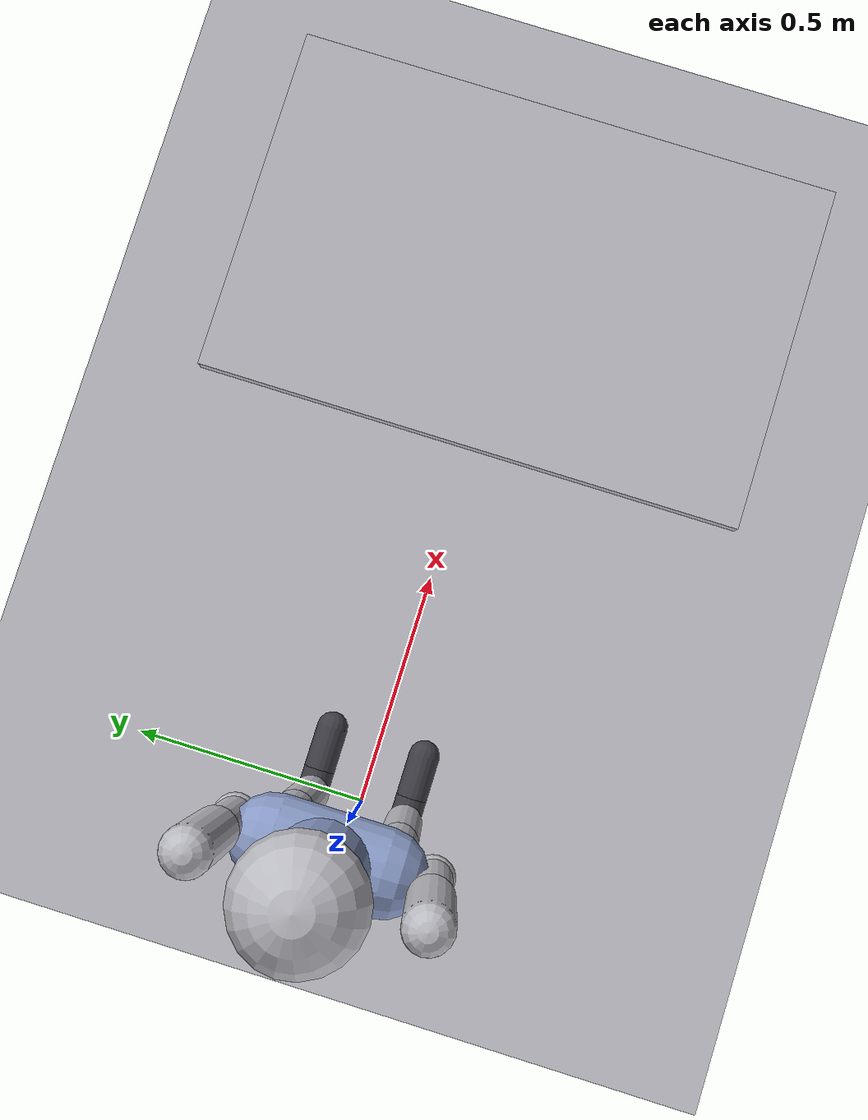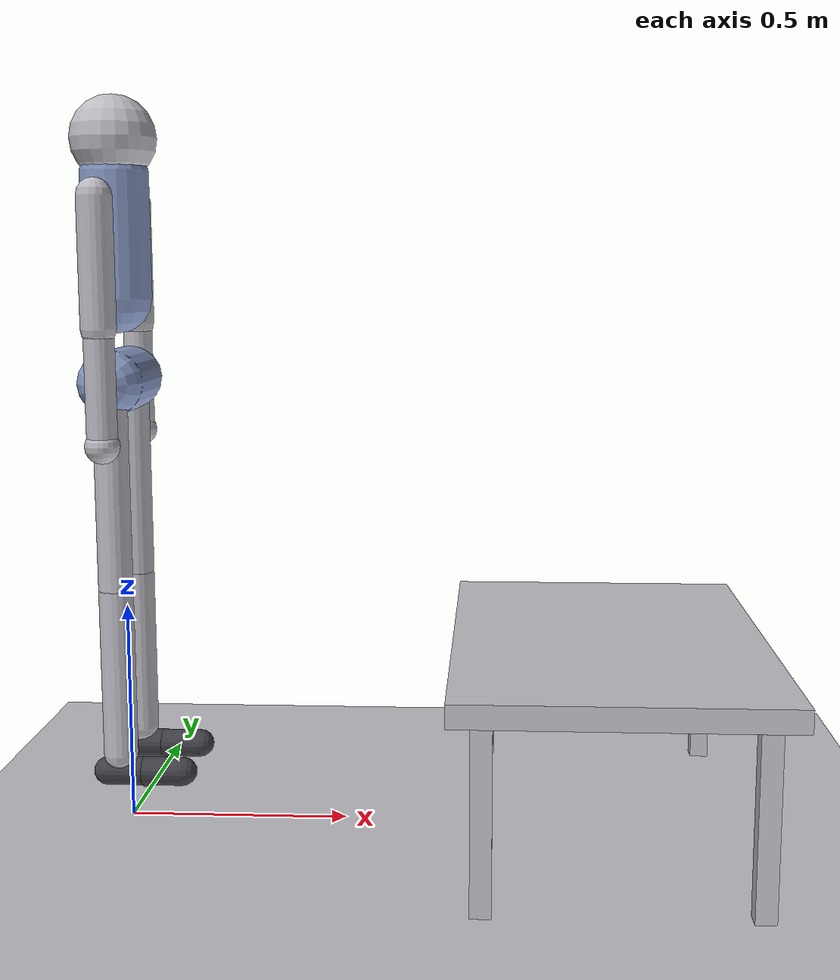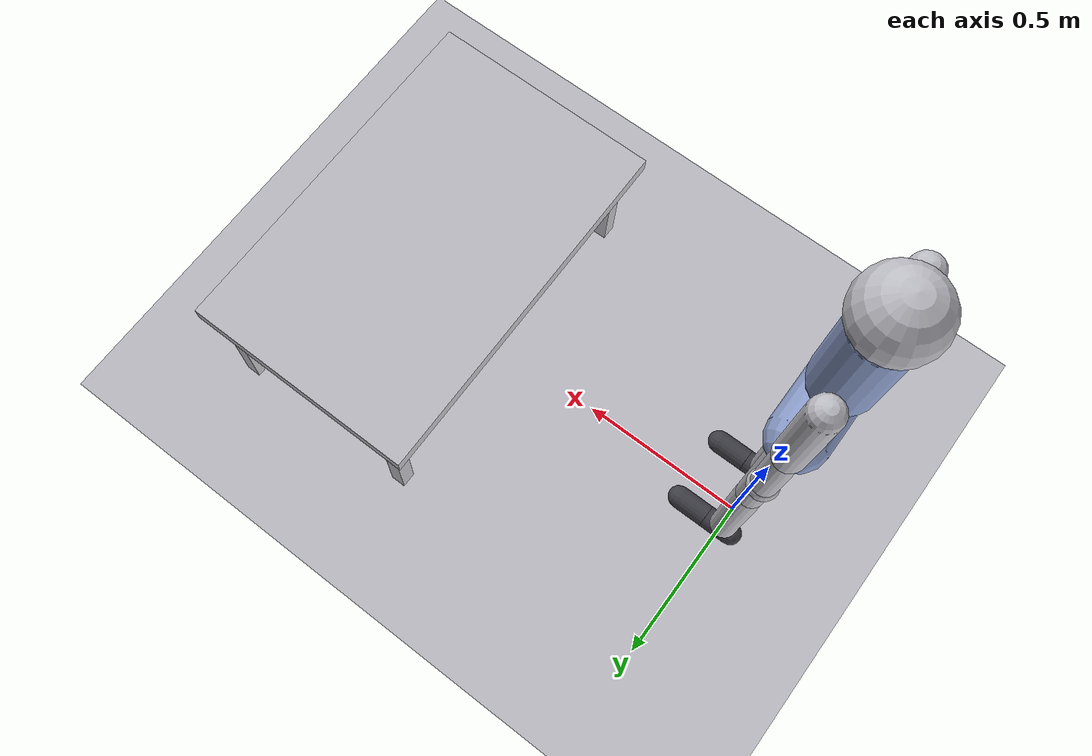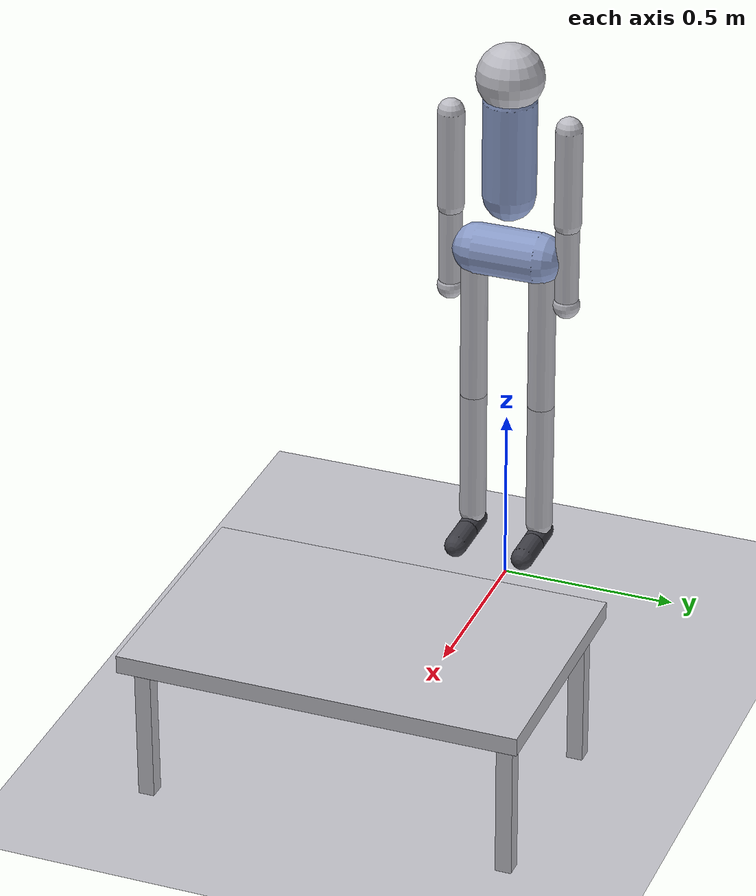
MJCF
<mujoco model="Titan_Humanoid_Competition_V2">

  <compiler angle="degree" autolimits="true"/>

  <option gravity="0 0 -9.81"
          timestep="0.001"
          iterations="50"
          solver="Newton"
          cone="pyramidal"
          impratio="10"/>

  <!-- ═══════════════════════════════════════════════════
       DEFAULT CLASSES
       Hierarchy: global → limb | torso | foot | heavy_joint
  ════════════════════════════════════════════════════ -->
  <default>
    <!-- All joints: hinge, moderate structural damping, armature for realism -->
    <joint type="hinge" damping="1.0" armature="0.02" limited="true"/>
    <!-- All geoms: capsule, realistic human tissue density -->
    <geom type="capsule" rgba="0.75 0.75 0.78 1" density="985" contype="1" conaffinity="1"/>

    <default class="limb">
      <geom size="0.038"/>
    </default>

    <default class="torso_geom">
      <geom size="0.072" rgba="0.55 0.62 0.80 1"/>
    </default>

    <default class="foot_geom">
      <!-- Feet: lower density (shoes ~0.5 kg), high friction contype -->
      <geom size="0.032" density="600" rgba="0.25 0.25 0.28 1"
            contype="1" conaffinity="1"
            friction="0.9 0.005 0.0001"/>
    </default>

    <!-- Joints that carry heavy load: more damping -->
    <default class="heavy_joint">
      <joint damping="3.0" armature="0.06"/>
    </default>

    <!-- Self-collision group: limbs vs torso disabled -->
    <default class="self_nc">
      <geom contype="2" conaffinity="2"/>
    </default>
  </default>

  <!-- ═══════════════════════════════════════════════════
       ASSETS — materials for visual quality
  ════════════════════════════════════════════════════ -->
  <asset>
    <material name="floor_mat"  rgba="0.20 0.25 0.30 1" reflectance="0.2"/>
    <material name="table_mat"  rgba="0.42 0.28 0.18 1"/>
    <material name="skin_mat"   rgba="0.90 0.65 0.52 1"/>
    <material name="metal_mat"  rgba="0.50 0.55 0.62 1" reflectance="0.4"/>
  </asset>

  <!-- ═══════════════════════════════════════════════════
       WORLD
  ════════════════════════════════════════════════════ -->
  <worldbody>
    <light name="sun"     directional="true" diffuse=".8 .8 .8" specular=".2 .2 .2"
           pos="0 0 5"   dir="0 -0.3 -1" castshadow="true"/>
    <light name="fill"    directional="true" diffuse=".3 .3 .4"
           pos="-3 3 4"  dir="1 -1 -1"/>

    <!-- Floor: friction tuned for stable bipedal contact -->
    <geom name="floor" type="plane" size="10 10 0.1"
          material="floor_mat"
          friction="0.85 0.005 0.0001"
          contype="1" conaffinity="1"/>

    <!-- Table obstacle -->
    <body name="table" pos="1.1 0 0.42">
      <geom name="table_top"  type="box" size="0.35 0.55 0.025" material="table_mat"
            contype="1" conaffinity="1"/>
      <geom name="table_leg1" type="box" size="0.022 0.022 0.22" pos=" 0.28  0.50 -0.245" material="metal_mat"/>
      <geom name="table_leg2" type="box" size="0.022 0.022 0.22" pos="-0.28  0.50 -0.245" material="metal_mat"/>
      <geom name="table_leg3" type="box" size="0.022 0.022 0.22" pos=" 0.28 -0.50 -0.245" material="metal_mat"/>
      <geom name="table_leg4" type="box" size="0.022 0.022 0.22" pos="-0.28 -0.50 -0.245" material="metal_mat"/>
    </body>

    <body name="pelvis" pos="0 0 1.02">
      <freejoint name="root"/>

      <!-- Pelvis CoM site for ZMP computation -->
      <site name="pelvis_com" pos="0 0 0.05" size="0.01"/>
      <geom name="pelvis_geom" class="torso_geom" fromto="0 -0.09 0 0 0.09 0" rgba="0.55 0.62 0.80 1"/>

      <!-- ── TORSO ───────────────────────── -->
      <body name="torso" pos="0 0 0.18">
        <joint name="torso_pitch" axis="0 1 0" range="-20 20" damping="4.0" armature="0.08"/>
        <geom name="torso_geom" class="torso_geom" fromto="0 0 0 0 0 0.28" size="0.075"/>

        <!-- ── HEAD ─────────────────────── -->
        <body name="head" pos="0 0 0.35">
          <joint name="head_pitch" axis="0 1 0" range="-30 30" damping="0.5" armature="0.005"/>
          <geom name="head_geom" type="sphere" size="0.095" material="skin_mat"
                contype="4" conaffinity="4"/>
          <site name="head_imu" pos="0 0 0" size="0.01"/>
        </body>

        <!-- ── RIGHT ARM ─────────────────── -->
        <body name="r_upper_arm" pos="0 -0.17 0.22">
          <joint name="r_shoulder_pitch" axis="0 1 0" range="-170 60"  damping="1.5" armature="0.03"/>
          <joint name="r_shoulder_roll"  axis="1 0 0" range="-90  60"  damping="1.2" armature="0.025"/>
          <geom class="limb" fromto="0 0 0 0 0 -0.28"/>
          <body name="r_forearm" pos="0 0 -0.28">
            <joint name="r_elbow" axis="0 1 0" range="-135 5" damping="0.8" armature="0.015"/>
            <geom class="limb" fromto="0 0 0 0 0 -0.25" size="0.033"/>
            <body name="r_hand" pos="0 0 -0.25">
              <joint name="r_wrist_pitch" axis="0 1 0" range="-60 60" damping="0.3" armature="0.005"/>
              <geom type="sphere" size="0.038" material="skin_mat" contype="4" conaffinity="4"/>
              <site name="r_wrist_site" pos="0 0 0" size="0.008"/>
            </body>
          </body>
        </body>

        <!-- ── LEFT ARM ──────────────────── -->
        <body name="l_upper_arm" pos="0 0.17 0.22">
          <joint name="l_shoulder_pitch" axis="0 1 0" range="-170 60"  damping="1.5" armature="0.03"/>
          <joint name="l_shoulder_roll"  axis="1 0 0" range="-60  90"  damping="1.2" armature="0.025"/>
          <geom class="limb" fromto="0 0 0 0 0 -0.28"/>
          <body name="l_forearm" pos="0 0 -0.28">
            <joint name="l_elbow" axis="0 1 0" range="-135 5" damping="0.8" armature="0.015"/>
            <geom class="limb" fromto="0 0 0 0 0 -0.25" size="0.033"/>
            <body name="l_hand" pos="0 0 -0.25">
              <joint name="l_wrist_pitch" axis="0 1 0" range="-60 60" damping="0.3" armature="0.005"/>
              <geom type="sphere" size="0.038" material="skin_mat" contype="4" conaffinity="4"/>
              <site name="l_wrist_site" pos="0 0 0" size="0.008"/>
            </body>
          </body>
        </body>

      </body> <!-- /torso -->

      <!-- ── RIGHT LEG ──────────────────────────────── -->
      <body name="r_thigh" pos="0 -0.10 -0.04">
        <joint name="r_hip_pitch" class="heavy_joint" axis="0 1 0" range="-60 90"/>
        <joint name="r_hip_roll"  class="heavy_joint" axis="1 0 0" range="-30 30"/>
        <geom class="limb" fromto="0 0 0 0 0 -0.42"/>

        <body name="r_shin" pos="0 0 -0.42">
          <joint name="r_knee" class="heavy_joint" axis="0 1 0" range="-5 135"/>
          <geom class="limb" fromto="0 0 0 0 0 -0.38"/>

          <body name="r_foot" pos="0 0 -0.38">
            <joint name="r_ankle_pitch" axis="0 1 0" range="-40 30" damping="1.5" armature="0.03"/>
            <joint name="r_ankle_roll"  axis="1 0 0" range="-20 20" damping="0.8" armature="0.015"/>
            <!-- Heel capsule -->
            <geom name="r_heel" class="foot_geom" fromto="-0.03 0 -0.04  0.05 0 -0.04"/>
            <!-- Toe capsule -->
            <geom name="r_toe"  class="foot_geom" fromto=" 0.05 0 -0.04  0.14 0 -0.04"/>
            <!-- Sole contact site for force sensing -->
            <site name="r_sole" pos="0.055 0 -0.07" size="0.008"/>
          </body>
        </body>
      </body>

      <!-- ── LEFT LEG ───────────────────────────────── -->
      <body name="l_thigh" pos="0 0.10 -0.04">
        <joint name="l_hip_pitch" class="heavy_joint" axis="0 1 0" range="-60 90"/>
        <joint name="l_hip_roll"  class="heavy_joint" axis="1 0 0" range="-30 30"/>
        <geom class="limb" fromto="0 0 0 0 0 -0.42"/>

        <body name="l_shin" pos="0 0 -0.42">
          <joint name="l_knee" class="heavy_joint" axis="0 1 0" range="-5 135"/>
          <geom class="limb" fromto="0 0 0 0 0 -0.38"/>

          <body name="l_foot" pos="0 0 -0.38">
            <joint name="l_ankle_pitch" axis="0 1 0" range="-40 30" damping="1.5" armature="0.03"/>
            <joint name="l_ankle_roll"  axis="1 0 0" range="-20 20" damping="0.8" armature="0.015"/>
            <geom name="l_heel" class="foot_geom" fromto="-0.03 0 -0.04  0.05 0 -0.04"/>
            <geom name="l_toe"  class="foot_geom" fromto=" 0.05 0 -0.04  0.14 0 -0.04"/>
            <site name="l_sole" pos="0.055 0 -0.07" size="0.008"/>
          </body>
        </body>
      </body>

    </body> <!-- /pelvis -->
  </worldbody>

  <actuator>
    <!-- ── LEGS (primary locomotion DOF) ── -->
    <position name="r_hip_pitch_mot"  joint="r_hip_pitch"  kp="350" kv="18" forcerange="-220 220" ctrlrange="-1.047 1.571"/>
    <position name="r_hip_roll_mot"   joint="r_hip_roll"   kp="200" kv="12" forcerange="-120 120" ctrlrange="-0.524 0.524"/>
    <position name="r_knee_mot"       joint="r_knee"       kp="400" kv="22" forcerange="-250 250" ctrlrange="-0.087 2.356"/>
    <position name="r_ankle_pitch_mot" joint="r_ankle_pitch" kp="150" kv="8"  forcerange="-100 100" ctrlrange="-0.698 0.524"/>
    <position name="r_ankle_roll_mot"  joint="r_ankle_roll"  kp="80"  kv="4"  forcerange="-60  60"  ctrlrange="-0.349 0.349"/>

    <position name="l_hip_pitch_mot"  joint="l_hip_pitch"  kp="350" kv="18" forcerange="-220 220" ctrlrange="-1.047 1.571"/>
    <position name="l_hip_roll_mot"   joint="l_hip_roll"   kp="200" kv="12" forcerange="-120 120" ctrlrange="-0.524 0.524"/>
    <position name="l_knee_mot"       joint="l_knee"       kp="400" kv="22" forcerange="-250 250" ctrlrange="-0.087 2.356"/>
    <position name="l_ankle_pitch_mot" joint="l_ankle_pitch" kp="150" kv="8"  forcerange="-100 100" ctrlrange="-0.698 0.524"/>
    <position name="l_ankle_roll_mot"  joint="l_ankle_roll"  kp="80"  kv="4"  forcerange="-60  60"  ctrlrange="-0.349 0.349"/>

    <!-- ── TORSO ── -->
    <position name="torso_pitch_mot"  joint="torso_pitch"  kp="300" kv="20" forcerange="-180 180" ctrlrange="-0.349 0.349"/>

    <!-- ── ARMS (counter-swing, reduced torque) ── -->
    <position name="r_shoulder_p_mot" joint="r_shoulder_pitch" kp="120" kv="8"  forcerange="-80 80"  ctrlrange="-2.967 1.047"/>
    <position name="r_shoulder_r_mot" joint="r_shoulder_roll"  kp="100" kv="6"  forcerange="-60 60"  ctrlrange="-1.571 1.047"/>
    <position name="r_elbow_mot"      joint="r_elbow"          kp="80"  kv="5"  forcerange="-60 60"  ctrlrange="-2.356 0.087"/>
    <position name="r_wrist_mot"      joint="r_wrist_pitch"    kp="40"  kv="2"  forcerange="-25 25"  ctrlrange="-1.047 1.047"/>

    <position name="l_shoulder_p_mot" joint="l_shoulder_pitch" kp="120" kv="8"  forcerange="-80 80"  ctrlrange="-2.967 1.047"/>
    <position name="l_shoulder_r_mot" joint="l_shoulder_roll"  kp="100" kv="6"  forcerange="-60 60"  ctrlrange="-1.047 1.571"/>
    <position name="l_elbow_mot"      joint="l_elbow"          kp="80"  kv="5"  forcerange="-60 60"  ctrlrange="-2.356 0.087"/>
    <position name="l_wrist_mot"      joint="l_wrist_pitch"    kp="40"  kv="2"  forcerange="-25 25"  ctrlrange="-1.047 1.047"/>
  </actuator>

  <!-- ═══════════════════════════════════════════════════
       SENSORS
  ════════════════════════════════════════════════════ -->
  <sensor>
    <!-- IMU on pelvis -->
    <accelerometer name="pelvis_accel"  site="pelvis_com"/>
    <gyro          name="pelvis_gyro"   site="pelvis_com"/>
    <framequat     name="pelvis_quat"   objtype="site" objname="pelvis_com"/>

    <!-- IMU on head -->
    <accelerometer name="head_accel"    site="head_imu"/>

    <!-- Foot ground reaction forces -->
    <force  name="r_sole_force"  site="r_sole"/>
    <torque name="r_sole_torque" site="r_sole"/>
    <force  name="l_sole_force"  site="l_sole"/>
    <torque name="l_sole_torque" site="l_sole"/>

    <!-- Joint position sensors (subset for state estimation) -->
    <jointpos name="r_hip_pitch_pos" joint="r_hip_pitch"/>
    <jointpos name="r_knee_pos"      joint="r_knee"/>
    <jointpos name="r_ankle_pitch_pos" joint="r_ankle_pitch"/>
    <jointpos name="l_hip_pitch_pos" joint="l_hip_pitch"/>
    <jointpos name="l_knee_pos"      joint="l_knee"/>
    <jointpos name="l_ankle_pitch_pos" joint="l_ankle_pitch"/>

    <!-- Velocities -->
    <jointvel name="r_hip_pitch_vel" joint="r_hip_pitch"/>
    <jointvel name="r_knee_vel"      joint="r_knee"/>
    <jointvel name="l_hip_pitch_vel" joint="l_hip_pitch"/>
    <jointvel name="l_knee_vel"      joint="l_knee"/>
  </sensor>

</mujoco>
